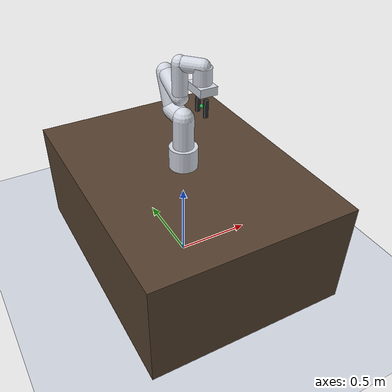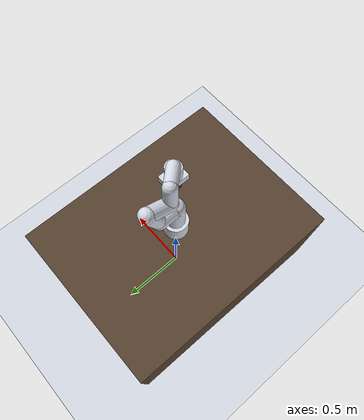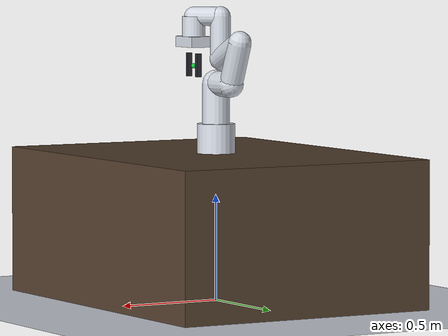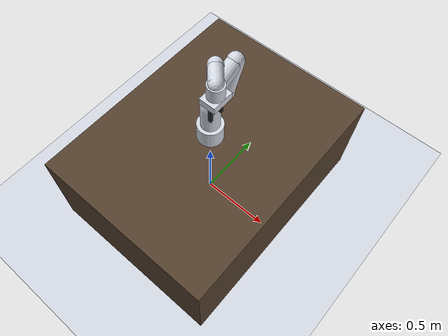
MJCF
<mujoco model="franka_emika_panda">
  <compiler angle="radian" autolimits="true"/>
  <option timestep="0.002" gravity="0 0 -9.81" integrator="implicitfast">
    <flag contact="enable"/>
  </option>

  <default>
    <joint damping="1.2" armature="0.08" frictionloss="0.05"/>
    <geom condim="4" friction="0.8 0.1 0.01" density="700" rgba="0.82 0.84 0.88 1"/>
    <position kp="180" kv="35" ctrllimited="true" forcelimited="true"/>
    <default class="finger">
      <joint type="slide" axis="0 1 0" range="0 0.04" damping="2" armature="0.01"/>
      <geom type="box" size="0.012 0.009 0.055" density="500" rgba="0.15 0.16 0.18 1"/>
      <position kp="400" kv="30" ctrlrange="0 0.04" forcerange="-40 40"/>
    </default>
  </default>

  <visual>
    <headlight ambient="0.35 0.35 0.35" diffuse="0.75 0.75 0.75" specular="0.2 0.2 0.2"/>
    <rgba haze="0.15 0.25 0.35 1"/>
    <global azimuth="135" elevation="-25"/>
  </visual>

  <asset>
    <texture name="floor_tex" type="2d" builtin="checker" rgb1="0.20 0.24 0.27" rgb2="0.12 0.15 0.17" width="512" height="512"/>
    <material name="floor_mat" texture="floor_tex" texrepeat="4 4" reflectance="0.15"/>
    <material name="white" rgba="0.88 0.90 0.92 1"/>
    <material name="dark" rgba="0.12 0.14 0.16 1"/>
    <material name="accent" rgba="0.08 0.52 0.70 1"/>
  </asset>

  <worldbody>
    <light pos="1.5 -1.5 2.8" dir="-0.5 0.5 -1" directional="true"/>
    <geom name="floor" type="plane" size="2 2 0.05" material="floor_mat" density="0"/>
    <geom name="table" type="box" pos="0 0 0.35" size="0.65 0.85 0.35" density="0" rgba="0.33 0.25 0.18 1"/>
    <camera name="overview" pos="1.65 -1.65 1.45" xyaxes="0.707 0.707 0 -0.32 0.32 0.89"/>

    <body name="panda_link0" pos="0 0 0.70">
      <geom type="cylinder" size="0.09 0.07" pos="0 0 0.07" material="dark"/>
      <body name="panda_link1" pos="0 0 0.14">
        <joint name="panda_joint1" type="hinge" axis="0 0 1" range="-2.8973 2.8973"/>
        <geom type="capsule" fromto="0 0 0 0 0 0.19" size="0.065" material="white"/>
        <body name="panda_link2" pos="0 0 0.19" quat="0.707107 -0.707107 0 0">
          <joint name="panda_joint2" type="hinge" axis="0 0 1" range="-1.7628 1.7628"/>
          <geom type="capsule" fromto="0 0 0 0 0 0.14" size="0.06" material="dark"/>
          <body name="panda_link3" pos="0 0 0.14" quat="0.707107 0.707107 0 0">
            <joint name="panda_joint3" type="hinge" axis="0 0 1" range="-2.8973 2.8973"/>
            <geom type="capsule" fromto="0 0 0 0 0.0825 0.20" size="0.055" material="white"/>
            <body name="panda_link4" pos="0 0.0825 0.20" quat="0.707107 0.707107 0 0">
              <joint name="panda_joint4" type="hinge" axis="0 0 1" range="-3.0718 -0.0698"/>
              <geom type="capsule" fromto="0 0 0 0 -0.0825 0.18" size="0.052" material="dark"/>
              <body name="panda_link5" pos="0 -0.0825 0.18" quat="0.707107 -0.707107 0 0">
                <joint name="panda_joint5" type="hinge" axis="0 0 1" range="-2.8973 2.8973"/>
                <geom type="capsule" fromto="0 0 0 0 0 0.20" size="0.048" material="white"/>
                <body name="panda_link6" pos="0 0 0.20" quat="0.707107 0.707107 0 0">
                  <joint name="panda_joint6" type="hinge" axis="0 0 1" range="-0.0175 3.7525"/>
                  <geom type="capsule" fromto="0 0 0 0.088 0 0.10" size="0.045" material="dark"/>
                  <body name="panda_link7" pos="0.088 0 0.10" quat="0.707107 0.707107 0 0">
                    <joint name="panda_joint7" type="hinge" axis="0 0 1" range="-2.8973 2.8973"/>
                    <geom type="cylinder" size="0.055 0.06" pos="0 0 0.06" material="white"/>
                    <body name="panda_hand" pos="0 0 0.12">
                      <geom type="box" size="0.055 0.075 0.025" material="dark"/>
                      <site name="grasp_site" pos="0 0 0.115" size="0.012" rgba="0.08 0.8 0.25 1"/>
                      <body name="panda_leftfinger" pos="0 0.045 0.07">
                        <joint name="panda_finger_joint1" class="finger"/>
                        <geom class="finger" pos="0 0 0.04"/>
                      </body>
                      <body name="panda_rightfinger" pos="0 -0.045 0.07">
                        <joint name="panda_finger_joint2" class="finger" axis="0 -1 0"/>
                        <geom class="finger" pos="0 0 0.04"/>
                      </body>
                    </body>
                  </body>
                </body>
              </body>
            </body>
          </body>
        </body>
      </body>
    </body>
  </worldbody>

  <actuator>
    <position name="joint1" joint="panda_joint1" ctrlrange="-2.8973 2.8973" forcerange="-87 87"/>
    <position name="joint2" joint="panda_joint2" ctrlrange="-1.7628 1.7628" forcerange="-87 87"/>
    <position name="joint3" joint="panda_joint3" ctrlrange="-2.8973 2.8973" forcerange="-87 87"/>
    <position name="joint4" joint="panda_joint4" ctrlrange="-3.0718 -0.0698" forcerange="-87 87"/>
    <position name="joint5" joint="panda_joint5" ctrlrange="-2.8973 2.8973" forcerange="-12 12"/>
    <position name="joint6" joint="panda_joint6" ctrlrange="-0.0175 3.7525" forcerange="-12 12"/>
    <position name="joint7" joint="panda_joint7" ctrlrange="-2.8973 2.8973" forcerange="-12 12"/>
    <position name="finger1" joint="panda_finger_joint1" class="finger"/>
    <position name="finger2" joint="panda_finger_joint2" class="finger"/>
  </actuator>

  <keyframe>
    <key name="home" qpos="0 -0.55 0 -2.25 0 1.75 0.78 0.02 0.02" ctrl="0 -0.55 0 -2.25 0 1.75 0.78 0.02 0.02"/>
  </keyframe>
</mujoco>
